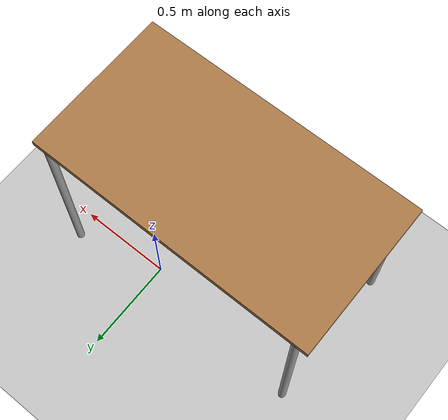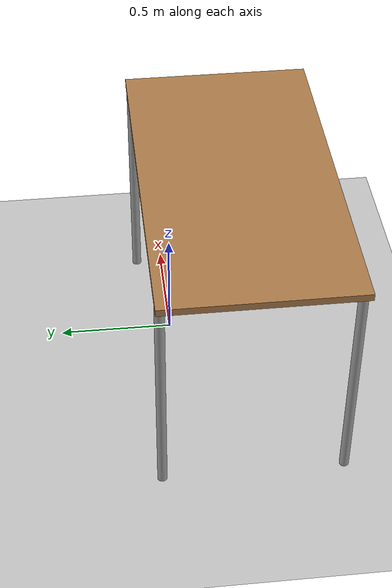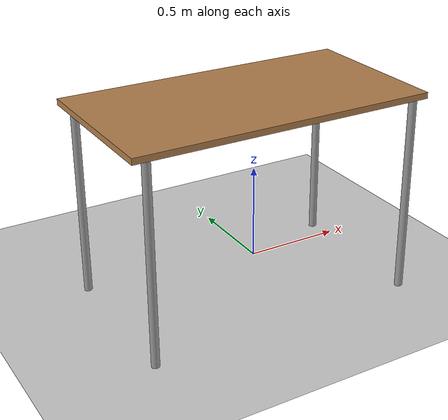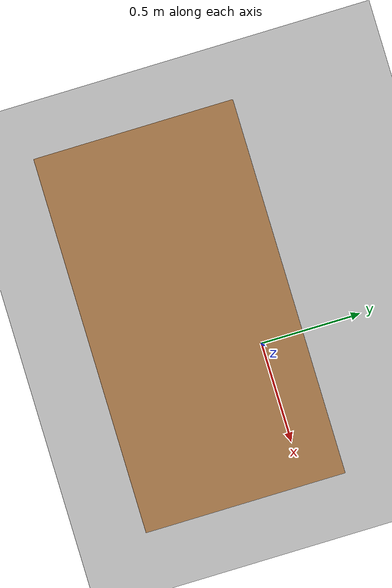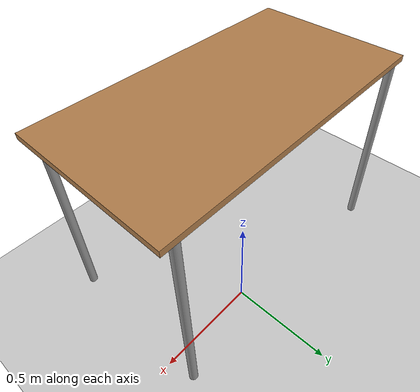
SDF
<sdf version="1.4">
 <world name="default">
  <include><uri>model://ground_plane</uri></include>
  <include><uri>model://sun</uri></include>
  <include><uri>model://table</uri><name>table</name><pose>-0.216792 -0.261748 0 0 0 0</pose></include>
  <physics type="ode">
   <max_step_size>0.001</max_step_size>
   <real_time_factor>1</real_time_factor>
   <real_time_update_rate>1000</real_time_update_rate>
   <gravity>0 0 -9.81</gravity>
  </physics>
 </world>
</sdf>

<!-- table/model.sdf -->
<sdf version="1.5">
  <model name="table">
    <static>true</static>
    <link name="link">
      <collision name="surface">
        <pose>0 0 1.0 0 0 0</pose>
        <geometry>
          <box>
            <size>1.5 0.8 0.03</size>
          </box>
        </geometry>
        <surface>
          <friction>
            <ode>
              <mu>0.6</mu>
              <mu2>0.6</mu2>
            </ode>
          </friction>
        </surface>
      </collision>
      <visual name="visual1">
        <pose>0 0 1.0 0 0 0</pose>
        <geometry>
          <box>
            <size>1.5 0.8 0.03</size>
          </box>
        </geometry>
        <material>
          <script>
            <uri>model://media/materials/scripts/gazebo.material</uri>
            <name>Gazebo/Wood</name>
          </script>
        </material>
      </visual>
      <collision name="front_left_leg">
        <pose>0.68 0.38 0.5 0 0 0</pose>
        <geometry>
          <cylinder>
            <radius>0.02</radius>
            <length>1.0</length>
          </cylinder>
        </geometry>
      </collision>
      <visual name="front_left_leg">
        <pose>0.68 0.38 0.5 0 0 0</pose>
        <geometry>
          <cylinder>
            <radius>0.02</radius>
            <length>1.0</length>
          </cylinder>
        </geometry>
        <material>
          <script>
            <uri>model://media/materials/scripts/gazebo.material</uri>
            <name>Gazebo/Grey</name>
          </script>
        </material>
      </visual>
      <collision name="front_right_leg">
        <pose>0.68 -0.38 0.5 0 0 0</pose>
        <geometry>
          <cylinder>
            <radius>0.02</radius>
            <length>1.0</length>
          </cylinder>
        </geometry>
      </collision>
      <visual name="front_right_leg">
        <pose>0.68 -0.38 0.5 0 0 0</pose>
        <geometry>
          <cylinder>
            <radius>0.02</radius>
            <length>1.0</length>
          </cylinder>
        </geometry>
        <material>
          <script>
            <uri>model://media/materials/scripts/gazebo.material</uri>
            <name>Gazebo/Grey</name>
          </script>
        </material>
      </visual>
      <collision name="back_right_leg">
        <pose>-0.68 -0.38 0.5 0 0 0</pose>
        <geometry>
          <cylinder>
            <radius>0.02</radius>
            <length>1.0</length>
          </cylinder>
        </geometry>
      </collision>
      <visual name="back_right_leg">
        <pose>-0.68 -0.38 0.5 0 0 0</pose>
        <geometry>
          <cylinder>
            <radius>0.02</radius>
            <length>1.0</length>
          </cylinder>
        </geometry>
        <material>
          <script>
            <uri>model://media/materials/scripts/gazebo.material</uri>
            <name>Gazebo/Grey</name>
          </script>
        </material>
      </visual>
      <collision name="back_left_leg">
        <pose>-0.68 0.38 0.5 0 0 0</pose>
        <geometry>
          <cylinder>
            <radius>0.02</radius>
            <length>1.0</length>
          </cylinder>
        </geometry>
      </collision>
      <visual name="back_left_leg">
        <pose>-0.68 0.38 0.5 0 0 0</pose>
        <geometry>
          <cylinder>
            <radius>0.02</radius>
            <length>1.0</length>
          </cylinder>
        </geometry>
        <material>
          <script>
            <uri>model://media/materials/scripts/gazebo.material</uri>
            <name>Gazebo/Grey</name>
          </script>
        </material>
      </visual>
    </link>
  </model>
</sdf>
